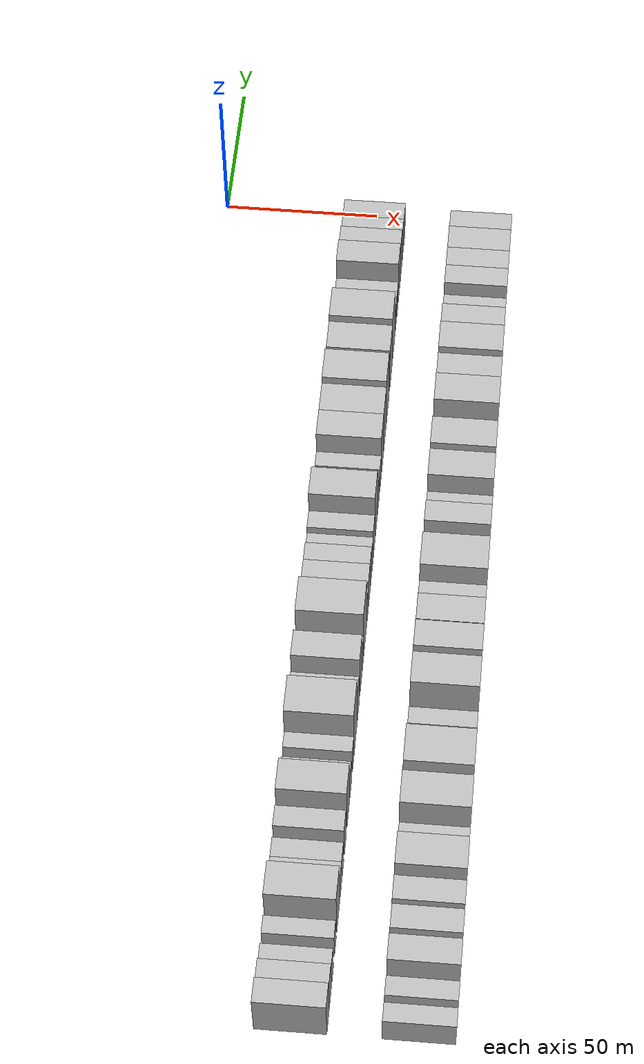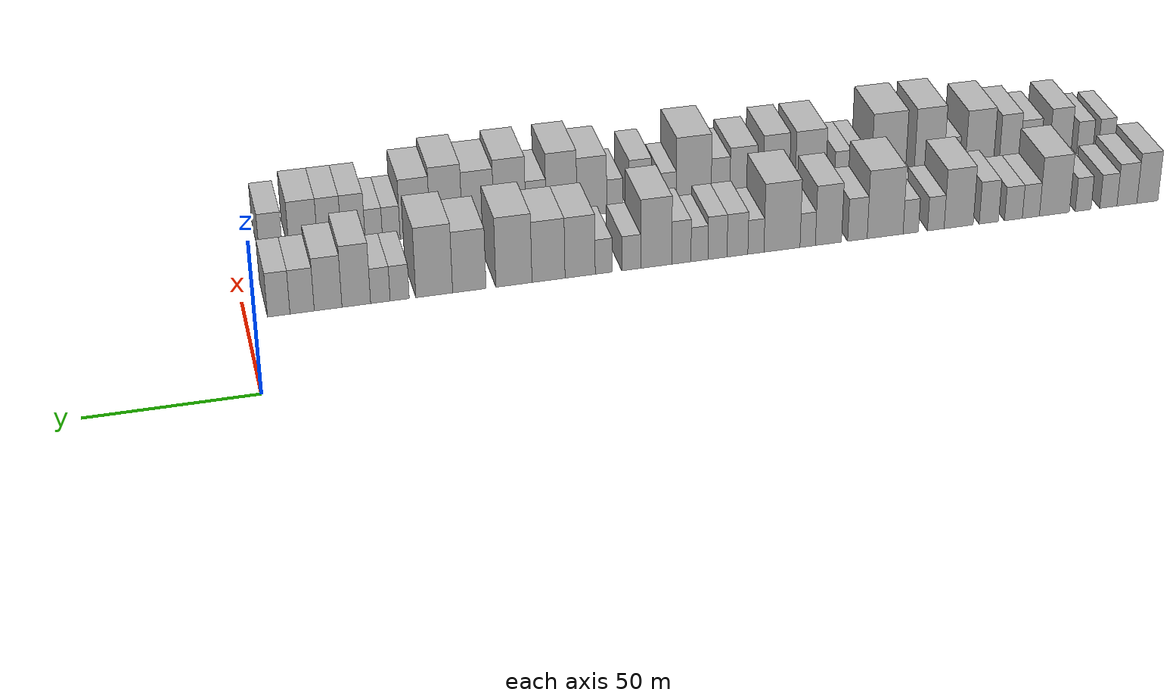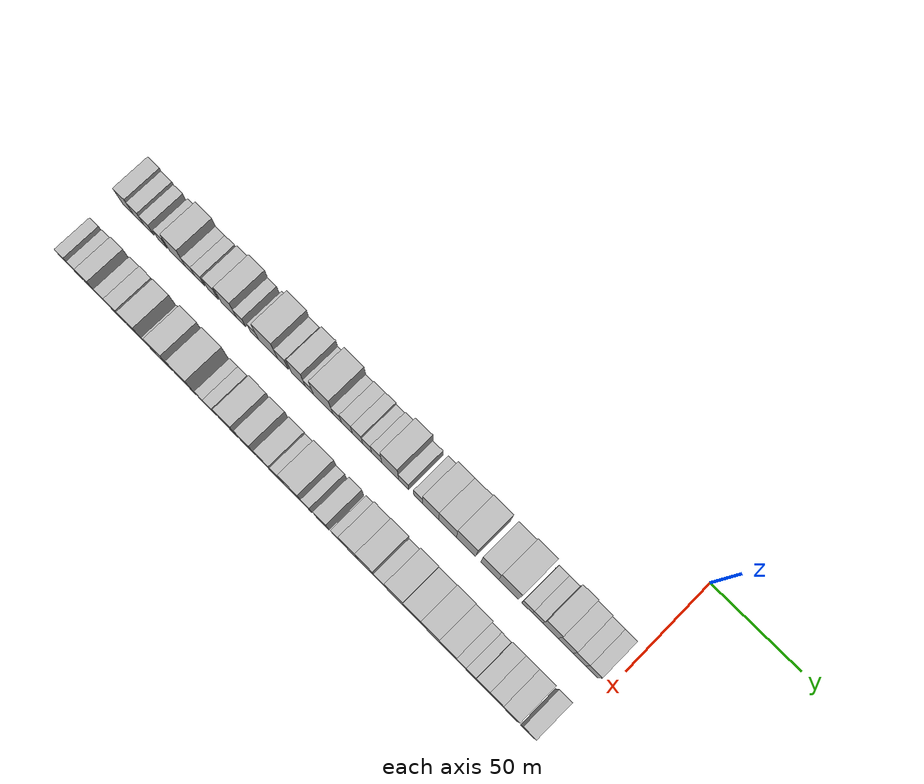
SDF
<sdf version="1.6">
 <world name="default">
  <model name="building_1">
   <static>1</static>
   <pose>50.0000 -286.3895 0 0.000000 0.000000 0.000000</pose>
   <link name="link">
    <pose>0 0 9.00 0 0 0</pose>
    <collision name="collision"><geometry><box><size>20.0000 7.2210 18.0000</size></box></geometry></collision>
    <visual name="visual">
     <cast_shadows>0</cast_shadows>
     <geometry><box><size>20.0000 7.2210 18.0000</size></box></geometry>
     <material>
      <script>
       <uri>model://HANNAS_wall/materials/scripts</uri>
       <uri>model://HANNAS_wall/materials/textures</uri>
       <name>vrc/HANNAS_wall</name>
      </script>
     </material>
    </visual>
   </link>
  </model>
  <model name="building_2">
   <static>1</static>
   <pose>50.0000 -279.3729 0 0.000000 0.000000 0.000000</pose>
   <link name="link">
    <pose>0 0 7.50 0 0 0</pose>
    <collision name="collision"><geometry><box><size>20.0000 6.8122 15.0000</size></box></geometry></collision>
    <visual name="visual">
     <cast_shadows>0</cast_shadows>
     <geometry><box><size>20.0000 6.8122 15.0000</size></box></geometry>
     <material>
      <script>
       <uri>model://HANNAS_wall/materials/scripts</uri>
       <uri>model://HANNAS_wall/materials/textures</uri>
       <name>vrc/HANNAS_wall</name>
      </script>
     </material>
    </visual>
   </link>
  </model>
  <model name="building_3">
   <static>1</static>
   <pose>50.0000 -273.0551 0 0.000000 0.000000 0.000000</pose>
   <link name="link">
    <pose>0 0 6.00 0 0 0</pose>
    <collision name="collision"><geometry><box><size>20.0000 5.8235 12.0000</size></box></geometry></collision>
    <visual name="visual">
     <cast_shadows>0</cast_shadows>
     <geometry><box><size>20.0000 5.8235 12.0000</size></box></geometry>
     <material>
      <script>
       <uri>model://HANNAS_wall/materials/scripts</uri>
       <uri>model://HANNAS_wall/materials/textures</uri>
       <name>vrc/HANNAS_wall</name>
      </script>
     </material>
    </visual>
   </link>
  </model>
  <model name="building_4">
   <static>1</static>
   <pose>50.0000 -264.4733 0 0.000000 0.000000 0.000000</pose>
   <link name="link">
    <pose>0 0 6.00 0 0 0</pose>
    <collision name="collision"><geometry><box><size>20.0000 5.3401 12.0000</size></box></geometry></collision>
    <visual name="visual">
     <cast_shadows>0</cast_shadows>
     <geometry><box><size>20.0000 5.3401 12.0000</size></box></geometry>
     <material>
      <script>
       <uri>model://HANNAS_wall/materials/scripts</uri>
       <uri>model://HANNAS_wall/materials/textures</uri>
       <name>vrc/HANNAS_wall</name>
      </script>
     </material>
    </visual>
   </link>
  </model>
  <model name="building_5">
   <static>1</static>
   <pose>50.0000 -254.7529 0 0.000000 0.000000 0.000000</pose>
   <link name="link">
    <pose>0 0 10.50 0 0 0</pose>
    <collision name="collision"><geometry><box><size>20.0000 10.1005 21.0000</size></box></geometry></collision>
    <visual name="visual">
     <cast_shadows>0</cast_shadows>
     <geometry><box><size>20.0000 10.1005 21.0000</size></box></geometry>
     <material>
      <script>
       <uri>model://HANNAS_wall/materials/scripts</uri>
       <uri>model://HANNAS_wall/materials/textures</uri>
       <name>vrc/HANNAS_wall</name>
      </script>
     </material>
    </visual>
   </link>
  </model>
  <model name="building_6">
   <static>1</static>
   <pose>50.0000 -246.8271 0 0.000000 0.000000 0.000000</pose>
   <link name="link">
    <pose>0 0 6.00 0 0 0</pose>
    <collision name="collision"><geometry><box><size>20.0000 5.7511 12.0000</size></box></geometry></collision>
    <visual name="visual">
     <cast_shadows>0</cast_shadows>
     <geometry><box><size>20.0000 5.7511 12.0000</size></box></geometry>
     <material>
      <script>
       <uri>model://HANNAS_wall/materials/scripts</uri>
       <uri>model://HANNAS_wall/materials/textures</uri>
       <name>vrc/HANNAS_wall</name>
      </script>
     </material>
    </visual>
   </link>
  </model>
  <model name="building_7">
   <static>1</static>
   <pose>50.0000 -240.9666 0 0.000000 0.000000 0.000000</pose>
   <link name="link">
    <pose>0 0 6.00 0 0 0</pose>
    <collision name="collision"><geometry><box><size>20.0000 5.9700 12.0000</size></box></geometry></collision>
    <visual name="visual">
     <cast_shadows>0</cast_shadows>
     <geometry><box><size>20.0000 5.9700 12.0000</size></box></geometry>
     <material>
      <script>
       <uri>model://HANNAS_wall/materials/scripts</uri>
       <uri>model://HANNAS_wall/materials/textures</uri>
       <name>vrc/HANNAS_wall</name>
      </script>
     </material>
    </visual>
   </link>
  </model>
  <model name="building_8">
   <static>1</static>
   <pose>50.0000 -232.7494 0 0.000000 0.000000 0.000000</pose>
   <link name="link">
    <pose>0 0 7.50 0 0 0</pose>
    <collision name="collision"><geometry><box><size>20.0000 6.4645 15.0000</size></box></geometry></collision>
    <visual name="visual">
     <cast_shadows>0</cast_shadows>
     <geometry><box><size>20.0000 6.4645 15.0000</size></box></geometry>
     <material>
      <script>
       <uri>model://HANNAS_wall/materials/scripts</uri>
       <uri>model://HANNAS_wall/materials/textures</uri>
       <name>vrc/HANNAS_wall</name>
      </script>
     </material>
    </visual>
   </link>
  </model>
  <model name="building_9">
   <static>1</static>
   <pose>50.0000 -222.6896 0 0.000000 0.000000 0.000000</pose>
   <link name="link">
    <pose>0 0 10.50 0 0 0</pose>
    <collision name="collision"><geometry><box><size>20.0000 9.6550 21.0000</size></box></geometry></collision>
    <visual name="visual">
     <cast_shadows>0</cast_shadows>
     <geometry><box><size>20.0000 9.6550 21.0000</size></box></geometry>
     <material>
      <script>
       <uri>model://HANNAS_wall/materials/scripts</uri>
       <uri>model://HANNAS_wall/materials/textures</uri>
       <name>vrc/HANNAS_wall</name>
      </script>
     </material>
    </visual>
   </link>
  </model>
  <model name="building_10">
   <static>1</static>
   <pose>50.0000 -215.1177 0 0.000000 0.000000 0.000000</pose>
   <link name="link">
    <pose>0 0 6.00 0 0 0</pose>
    <collision name="collision"><geometry><box><size>20.0000 5.4889 12.0000</size></box></geometry></collision>
    <visual name="visual">
     <cast_shadows>0</cast_shadows>
     <geometry><box><size>20.0000 5.4889 12.0000</size></box></geometry>
     <material>
      <script>
       <uri>model://HANNAS_wall/materials/scripts</uri>
       <uri>model://HANNAS_wall/materials/textures</uri>
       <name>vrc/HANNAS_wall</name>
      </script>
     </material>
    </visual>
   </link>
  </model>
  <model name="building_11">
   <static>1</static>
   <pose>50.0000 -206.8450 0 0.000000 0.000000 0.000000</pose>
   <link name="link">
    <pose>0 0 6.00 0 0 0</pose>
    <collision name="collision"><geometry><box><size>20.0000 5.0564 12.0000</size></box></geometry></collision>
    <visual name="visual">
     <cast_shadows>0</cast_shadows>
     <geometry><box><size>20.0000 5.0564 12.0000</size></box></geometry>
     <material>
      <script>
       <uri>model://HANNAS_wall/materials/scripts</uri>
       <uri>model://HANNAS_wall/materials/textures</uri>
       <name>vrc/HANNAS_wall</name>
      </script>
     </material>
    </visual>
   </link>
  </model>
  <model name="building_12">
   <static>1</static>
   <pose>50.0000 -198.4325 0 0.000000 0.000000 0.000000</pose>
   <link name="link">
    <pose>0 0 12.00 0 0 0</pose>
    <collision name="collision"><geometry><box><size>20.0000 11.7688 24.0000</size></box></geometry></collision>
    <visual name="visual">
     <cast_shadows>0</cast_shadows>
     <geometry><box><size>20.0000 11.7688 24.0000</size></box></geometry>
     <material>
      <script>
       <uri>model://HANNAS_wall/materials/scripts</uri>
       <uri>model://HANNAS_wall/materials/textures</uri>
       <name>vrc/HANNAS_wall</name>
      </script>
     </material>
    </visual>
   </link>
  </model>
  <model name="building_13">
   <static>1</static>
   <pose>50.0000 -189.3701 0 0.000000 0.000000 0.000000</pose>
   <link name="link">
    <pose>0 0 7.50 0 0 0</pose>
    <collision name="collision"><geometry><box><size>20.0000 6.3559 15.0000</size></box></geometry></collision>
    <visual name="visual">
     <cast_shadows>0</cast_shadows>
     <geometry><box><size>20.0000 6.3559 15.0000</size></box></geometry>
     <material>
      <script>
       <uri>model://HANNAS_wall/materials/scripts</uri>
       <uri>model://HANNAS_wall/materials/textures</uri>
       <name>vrc/HANNAS_wall</name>
      </script>
     </material>
    </visual>
   </link>
  </model>
  <model name="building_14">
   <static>1</static>
   <pose>50.0000 -179.9469 0 0.000000 0.000000 0.000000</pose>
   <link name="link">
    <pose>0 0 10.50 0 0 0</pose>
    <collision name="collision"><geometry><box><size>20.0000 8.4906 21.0000</size></box></geometry></collision>
    <visual name="visual">
     <cast_shadows>0</cast_shadows>
     <geometry><box><size>20.0000 8.4906 21.0000</size></box></geometry>
     <material>
      <script>
       <uri>model://HANNAS_wall/materials/scripts</uri>
       <uri>model://HANNAS_wall/materials/textures</uri>
       <name>vrc/HANNAS_wall</name>
      </script>
     </material>
    </visual>
   </link>
  </model>
  <model name="building_15">
   <static>1</static>
   <pose>50.0000 -173.2191 0 0.000000 0.000000 0.000000</pose>
   <link name="link">
    <pose>0 0 6.00 0 0 0</pose>
    <collision name="collision"><geometry><box><size>20.0000 4.9650 12.0000</size></box></geometry></collision>
    <visual name="visual">
     <cast_shadows>0</cast_shadows>
     <geometry><box><size>20.0000 4.9650 12.0000</size></box></geometry>
     <material>
      <script>
       <uri>model://HANNAS_wall/materials/scripts</uri>
       <uri>model://HANNAS_wall/materials/textures</uri>
       <name>vrc/HANNAS_wall</name>
      </script>
     </material>
    </visual>
   </link>
  </model>
  <model name="building_16">
   <static>1</static>
   <pose>50.0000 -164.9299 0 0.000000 0.000000 0.000000</pose>
   <link name="link">
    <pose>0 0 12.00 0 0 0</pose>
    <collision name="collision"><geometry><box><size>20.0000 11.6135 24.0000</size></box></geometry></collision>
    <visual name="visual">
     <cast_shadows>0</cast_shadows>
     <geometry><box><size>20.0000 11.6135 24.0000</size></box></geometry>
     <material>
      <script>
       <uri>model://HANNAS_wall/materials/scripts</uri>
       <uri>model://HANNAS_wall/materials/textures</uri>
       <name>vrc/HANNAS_wall</name>
      </script>
     </material>
    </visual>
   </link>
  </model>
  <model name="building_17">
   <static>1</static>
   <pose>50.0000 -156.5490 0 0.000000 0.000000 0.000000</pose>
   <link name="link">
    <pose>0 0 6.00 0 0 0</pose>
    <collision name="collision"><geometry><box><size>20.0000 5.1484 12.0000</size></box></geometry></collision>
    <visual name="visual">
     <cast_shadows>0</cast_shadows>
     <geometry><box><size>20.0000 5.1484 12.0000</size></box></geometry>
     <material>
      <script>
       <uri>model://HANNAS_wall/materials/scripts</uri>
       <uri>model://HANNAS_wall/materials/textures</uri>
       <name>vrc/HANNAS_wall</name>
      </script>
     </material>
    </visual>
   </link>
  </model>
  <model name="building_18">
   <static>1</static>
   <pose>50.0000 -150.6503 0 0.000000 0.000000 0.000000</pose>
   <link name="link">
    <pose>0 0 7.50 0 0 0</pose>
    <collision name="collision"><geometry><box><size>20.0000 6.6490 15.0000</size></box></geometry></collision>
    <visual name="visual">
     <cast_shadows>0</cast_shadows>
     <geometry><box><size>20.0000 6.6490 15.0000</size></box></geometry>
     <material>
      <script>
       <uri>model://HANNAS_wall/materials/scripts</uri>
       <uri>model://HANNAS_wall/materials/textures</uri>
       <name>vrc/HANNAS_wall</name>
      </script>
     </material>
    </visual>
   </link>
  </model>
  <model name="building_19">
   <static>1</static>
   <pose>50.0000 -144.2925 0 0.000000 0.000000 0.000000</pose>
   <link name="link">
    <pose>0 0 7.50 0 0 0</pose>
    <collision name="collision"><geometry><box><size>20.0000 6.0666 15.0000</size></box></geometry></collision>
    <visual name="visual">
     <cast_shadows>0</cast_shadows>
     <geometry><box><size>20.0000 6.0666 15.0000</size></box></geometry>
     <material>
      <script>
       <uri>model://HANNAS_wall/materials/scripts</uri>
       <uri>model://HANNAS_wall/materials/textures</uri>
       <name>vrc/HANNAS_wall</name>
      </script>
     </material>
    </visual>
   </link>
  </model>
  <model name="building_20">
   <static>1</static>
   <pose>50.0000 -138.5595 0 0.000000 0.000000 0.000000</pose>
   <link name="link">
    <pose>0 0 6.00 0 0 0</pose>
    <collision name="collision"><geometry><box><size>20.0000 5.3994 12.0000</size></box></geometry></collision>
    <visual name="visual">
     <cast_shadows>0</cast_shadows>
     <geometry><box><size>20.0000 5.3994 12.0000</size></box></geometry>
     <material>
      <script>
       <uri>model://HANNAS_wall/materials/scripts</uri>
       <uri>model://HANNAS_wall/materials/textures</uri>
       <name>vrc/HANNAS_wall</name>
      </script>
     </material>
    </visual>
   </link>
  </model>
  <model name="building_21">
   <static>1</static>
   <pose>50.0000 -132.8455 0 0.000000 0.000000 0.000000</pose>
   <link name="link">
    <pose>0 0 7.50 0 0 0</pose>
    <collision name="collision"><geometry><box><size>20.0000 6.0286 15.0000</size></box></geometry></collision>
    <visual name="visual">
     <cast_shadows>0</cast_shadows>
     <geometry><box><size>20.0000 6.0286 15.0000</size></box></geometry>
     <material>
      <script>
       <uri>model://HANNAS_wall/materials/scripts</uri>
       <uri>model://HANNAS_wall/materials/textures</uri>
       <name>vrc/HANNAS_wall</name>
      </script>
     </material>
    </visual>
   </link>
  </model>
  <model name="building_22">
   <static>1</static>
   <pose>50.0000 -124.9020 0 0.000000 0.000000 0.000000</pose>
   <link name="link">
    <pose>0 0 12.00 0 0 0</pose>
    <collision name="collision"><geometry><box><size>20.0000 9.8583 24.0000</size></box></geometry></collision>
    <visual name="visual">
     <cast_shadows>0</cast_shadows>
     <geometry><box><size>20.0000 9.8583 24.0000</size></box></geometry>
     <material>
      <script>
       <uri>model://HANNAS_wall/materials/scripts</uri>
       <uri>model://HANNAS_wall/materials/textures</uri>
       <name>vrc/HANNAS_wall</name>
      </script>
     </material>
    </visual>
   </link>
  </model>
  <model name="building_23">
   <static>1</static>
   <pose>50.0000 -117.0329 0 0.000000 0.000000 0.000000</pose>
   <link name="link">
    <pose>0 0 6.00 0 0 0</pose>
    <collision name="collision"><geometry><box><size>20.0000 5.8799 12.0000</size></box></geometry></collision>
    <visual name="visual">
     <cast_shadows>0</cast_shadows>
     <geometry><box><size>20.0000 5.8799 12.0000</size></box></geometry>
     <material>
      <script>
       <uri>model://HANNAS_wall/materials/scripts</uri>
       <uri>model://HANNAS_wall/materials/textures</uri>
       <name>vrc/HANNAS_wall</name>
      </script>
     </material>
    </visual>
   </link>
  </model>
  <model name="building_24">
   <static>1</static>
   <pose>50.0000 -108.4351 0 0.000000 0.000000 0.000000</pose>
   <link name="link">
    <pose>0 0 6.00 0 0 0</pose>
    <collision name="collision"><geometry><box><size>20.0000 5.3156 12.0000</size></box></geometry></collision>
    <visual name="visual">
     <cast_shadows>0</cast_shadows>
     <geometry><box><size>20.0000 5.3156 12.0000</size></box></geometry>
     <material>
      <script>
       <uri>model://HANNAS_wall/materials/scripts</uri>
       <uri>model://HANNAS_wall/materials/textures</uri>
       <name>vrc/HANNAS_wall</name>
      </script>
     </material>
    </visual>
   </link>
  </model>
  <model name="building_25">
   <static>1</static>
   <pose>50.0000 -101.0850 0 0.000000 0.000000 0.000000</pose>
   <link name="link">
    <pose>0 0 10.50 0 0 0</pose>
    <collision name="collision"><geometry><box><size>20.0000 9.3847 21.0000</size></box></geometry></collision>
    <visual name="visual">
     <cast_shadows>0</cast_shadows>
     <geometry><box><size>20.0000 9.3847 21.0000</size></box></geometry>
     <material>
      <script>
       <uri>model://HANNAS_wall/materials/scripts</uri>
       <uri>model://HANNAS_wall/materials/textures</uri>
       <name>vrc/HANNAS_wall</name>
      </script>
     </material>
    </visual>
   </link>
  </model>
  <model name="building_26">
   <static>1</static>
   <pose>50.0000 -91.2807 0 0.000000 0.000000 0.000000</pose>
   <link name="link">
    <pose>0 0 10.50 0 0 0</pose>
    <collision name="collision"><geometry><box><size>20.0000 10.2239 21.0000</size></box></geometry></collision>
    <visual name="visual">
     <cast_shadows>0</cast_shadows>
     <geometry><box><size>20.0000 10.2239 21.0000</size></box></geometry>
     <material>
      <script>
       <uri>model://HANNAS_wall/materials/scripts</uri>
       <uri>model://HANNAS_wall/materials/textures</uri>
       <name>vrc/HANNAS_wall</name>
      </script>
     </material>
    </visual>
   </link>
  </model>
  <model name="building_27">
   <static>1</static>
   <pose>50.0000 -80.6186 0 0.000000 0.000000 0.000000</pose>
   <link name="link">
    <pose>0 0 12.00 0 0 0</pose>
    <collision name="collision"><geometry><box><size>20.0000 11.1003 24.0000</size></box></geometry></collision>
    <visual name="visual">
     <cast_shadows>0</cast_shadows>
     <geometry><box><size>20.0000 11.1003 24.0000</size></box></geometry>
     <material>
      <script>
       <uri>model://HANNAS_wall/materials/scripts</uri>
       <uri>model://HANNAS_wall/materials/textures</uri>
       <name>vrc/HANNAS_wall</name>
      </script>
     </material>
    </visual>
   </link>
  </model>
  <model name="building_28">
   <static>1</static>
   <pose>50.0000 -66.9657 0 0.000000 0.000000 0.000000</pose>
   <link name="link">
    <pose>0 0 10.50 0 0 0</pose>
    <collision name="collision"><geometry><box><size>20.0000 10.2054 21.0000</size></box></geometry></collision>
    <visual name="visual">
     <cast_shadows>0</cast_shadows>
     <geometry><box><size>20.0000 10.2054 21.0000</size></box></geometry>
     <material>
      <script>
       <uri>model://HANNAS_wall/materials/scripts</uri>
       <uri>model://HANNAS_wall/materials/textures</uri>
       <name>vrc/HANNAS_wall</name>
      </script>
     </material>
    </visual>
   </link>
  </model>
  <model name="building_29">
   <static>1</static>
   <pose>50.0000 -56.2812 0 0.000000 0.000000 0.000000</pose>
   <link name="link">
    <pose>0 0 12.00 0 0 0</pose>
    <collision name="collision"><geometry><box><size>20.0000 11.1637 24.0000</size></box></geometry></collision>
    <visual name="visual">
     <cast_shadows>0</cast_shadows>
     <geometry><box><size>20.0000 11.1637 24.0000</size></box></geometry>
     <material>
      <script>
       <uri>model://HANNAS_wall/materials/scripts</uri>
       <uri>model://HANNAS_wall/materials/textures</uri>
       <name>vrc/HANNAS_wall</name>
      </script>
     </material>
    </visual>
   </link>
  </model>
  <model name="building_30">
   <static>1</static>
   <pose>50.0000 -45.8224 0 0.000000 0.000000 0.000000</pose>
   <link name="link">
    <pose>0 0 6.00 0 0 0</pose>
    <collision name="collision"><geometry><box><size>20.0000 5.7540 12.0000</size></box></geometry></collision>
    <visual name="visual">
     <cast_shadows>0</cast_shadows>
     <geometry><box><size>20.0000 5.7540 12.0000</size></box></geometry>
     <material>
      <script>
       <uri>model://HANNAS_wall/materials/scripts</uri>
       <uri>model://HANNAS_wall/materials/textures</uri>
       <name>vrc/HANNAS_wall</name>
      </script>
     </material>
    </visual>
   </link>
  </model>
  <model name="building_31">
   <static>1</static>
   <pose>50.0000 -40.0100 0 0.000000 0.000000 0.000000</pose>
   <link name="link">
    <pose>0 0 6.00 0 0 0</pose>
    <collision name="collision"><geometry><box><size>20.0000 5.8707 12.0000</size></box></geometry></collision>
    <visual name="visual">
     <cast_shadows>0</cast_shadows>
     <geometry><box><size>20.0000 5.8707 12.0000</size></box></geometry>
     <material>
      <script>
       <uri>model://HANNAS_wall/materials/scripts</uri>
       <uri>model://HANNAS_wall/materials/textures</uri>
       <name>vrc/HANNAS_wall</name>
      </script>
     </material>
    </visual>
   </link>
  </model>
  <model name="building_32">
   <static>1</static>
   <pose>50.0000 -32.7911 0 0.000000 0.000000 0.000000</pose>
   <link name="link">
    <pose>0 0 10.50 0 0 0</pose>
    <collision name="collision"><geometry><box><size>20.0000 8.5672 21.0000</size></box></geometry></collision>
    <visual name="visual">
     <cast_shadows>0</cast_shadows>
     <geometry><box><size>20.0000 8.5672 21.0000</size></box></geometry>
     <material>
      <script>
       <uri>model://HANNAS_wall/materials/scripts</uri>
       <uri>model://HANNAS_wall/materials/textures</uri>
       <name>vrc/HANNAS_wall</name>
      </script>
     </material>
    </visual>
   </link>
  </model>
  <model name="building_33">
   <static>1</static>
   <pose>50.0000 -24.3727 0 0.000000 0.000000 0.000000</pose>
   <link name="link">
    <pose>0 0 9.00 0 0 0</pose>
    <collision name="collision"><geometry><box><size>20.0000 8.2696 18.0000</size></box></geometry></collision>
    <visual name="visual">
     <cast_shadows>0</cast_shadows>
     <geometry><box><size>20.0000 8.2696 18.0000</size></box></geometry>
     <material>
      <script>
       <uri>model://HANNAS_wall/materials/scripts</uri>
       <uri>model://HANNAS_wall/materials/textures</uri>
       <name>vrc/HANNAS_wall</name>
      </script>
     </material>
    </visual>
   </link>
  </model>
  <model name="building_34">
   <static>1</static>
   <pose>50.0000 -16.6368 0 0.000000 0.000000 0.000000</pose>
   <link name="link">
    <pose>0 0 7.50 0 0 0</pose>
    <collision name="collision"><geometry><box><size>20.0000 7.2022 15.0000</size></box></geometry></collision>
    <visual name="visual">
     <cast_shadows>0</cast_shadows>
     <geometry><box><size>20.0000 7.2022 15.0000</size></box></geometry>
     <material>
      <script>
       <uri>model://HANNAS_wall/materials/scripts</uri>
       <uri>model://HANNAS_wall/materials/textures</uri>
       <name>vrc/HANNAS_wall</name>
      </script>
     </material>
    </visual>
   </link>
  </model>
  <model name="building_35">
   <static>1</static>
   <pose>50.0000 -9.7083 0 0.000000 0.000000 0.000000</pose>
   <link name="link">
    <pose>0 0 7.50 0 0 0</pose>
    <collision name="collision"><geometry><box><size>20.0000 6.6549 15.0000</size></box></geometry></collision>
    <visual name="visual">
     <cast_shadows>0</cast_shadows>
     <geometry><box><size>20.0000 6.6549 15.0000</size></box></geometry>
     <material>
      <script>
       <uri>model://HANNAS_wall/materials/scripts</uri>
       <uri>model://HANNAS_wall/materials/textures</uri>
       <name>vrc/HANNAS_wall</name>
      </script>
     </material>
    </visual>
   </link>
  </model>
  <model name="building_69">
   <static>1</static>
   <pose>85.0000 -287.2218 0 0.000000 0.000000 0.000000</pose>
   <link name="link">
    <pose>0 0 6.00 0 0 0</pose>
    <collision name="collision"><geometry><box><size>20.0000 5.5563 12.0000</size></box></geometry></collision>
    <visual name="visual">
     <cast_shadows>0</cast_shadows>
     <geometry><box><size>20.0000 5.5563 12.0000</size></box></geometry>
     <material>
      <script>
       <uri>model://HANNAS_wall/materials/scripts</uri>
       <uri>model://HANNAS_wall/materials/textures</uri>
       <name>vrc/HANNAS_wall</name>
      </script>
     </material>
    </visual>
   </link>
  </model>
  <model name="building_70">
   <static>1</static>
   <pose>85.0000 -279.5764 0 0.000000 0.000000 0.000000</pose>
   <link name="link">
    <pose>0 0 6.00 0 0 0</pose>
    <collision name="collision"><geometry><box><size>20.0000 5.7345 12.0000</size></box></geometry></collision>
    <visual name="visual">
     <cast_shadows>0</cast_shadows>
     <geometry><box><size>20.0000 5.7345 12.0000</size></box></geometry>
     <material>
      <script>
       <uri>model://HANNAS_wall/materials/scripts</uri>
       <uri>model://HANNAS_wall/materials/textures</uri>
       <name>vrc/HANNAS_wall</name>
      </script>
     </material>
    </visual>
   </link>
  </model>
  <model name="building_71">
   <static>1</static>
   <pose>85.0000 -270.8508 0 0.000000 0.000000 0.000000</pose>
   <link name="link">
    <pose>0 0 9.00 0 0 0</pose>
    <collision name="collision"><geometry><box><size>20.0000 7.7169 18.0000</size></box></geometry></collision>
    <visual name="visual">
     <cast_shadows>0</cast_shadows>
     <geometry><box><size>20.0000 7.7169 18.0000</size></box></geometry>
     <material>
      <script>
       <uri>model://HANNAS_wall/materials/scripts</uri>
       <uri>model://HANNAS_wall/materials/textures</uri>
       <name>vrc/HANNAS_wall</name>
      </script>
     </material>
    </visual>
   </link>
  </model>
  <model name="building_72">
   <static>1</static>
   <pose>85.0000 -260.3975 0 0.000000 0.000000 0.000000</pose>
   <link name="link">
    <pose>0 0 7.50 0 0 0</pose>
    <collision name="collision"><geometry><box><size>20.0000 7.1897 15.0000</size></box></geometry></collision>
    <visual name="visual">
     <cast_shadows>0</cast_shadows>
     <geometry><box><size>20.0000 7.1897 15.0000</size></box></geometry>
     <material>
      <script>
       <uri>model://HANNAS_wall/materials/scripts</uri>
       <uri>model://HANNAS_wall/materials/textures</uri>
       <name>vrc/HANNAS_wall</name>
      </script>
     </material>
    </visual>
   </link>
  </model>
  <model name="building_73">
   <static>1</static>
   <pose>85.0000 -253.2020 0 0.000000 0.000000 0.000000</pose>
   <link name="link">
    <pose>0 0 9.00 0 0 0</pose>
    <collision name="collision"><geometry><box><size>20.0000 7.2012 18.0000</size></box></geometry></collision>
    <visual name="visual">
     <cast_shadows>0</cast_shadows>
     <geometry><box><size>20.0000 7.2012 18.0000</size></box></geometry>
     <material>
      <script>
       <uri>model://HANNAS_wall/materials/scripts</uri>
       <uri>model://HANNAS_wall/materials/textures</uri>
       <name>vrc/HANNAS_wall</name>
      </script>
     </material>
    </visual>
   </link>
  </model>
  <model name="building_74">
   <static>1</static>
   <pose>85.0000 -242.7041 0 0.000000 0.000000 0.000000</pose>
   <link name="link">
    <pose>0 0 10.50 0 0 0</pose>
    <collision name="collision"><geometry><box><size>20.0000 9.7946 21.0000</size></box></geometry></collision>
    <visual name="visual">
     <cast_shadows>0</cast_shadows>
     <geometry><box><size>20.0000 9.7946 21.0000</size></box></geometry>
     <material>
      <script>
       <uri>model://HANNAS_wall/materials/scripts</uri>
       <uri>model://HANNAS_wall/materials/textures</uri>
       <name>vrc/HANNAS_wall</name>
      </script>
     </material>
    </visual>
   </link>
  </model>
  <model name="building_75">
   <static>1</static>
   <pose>85.0000 -233.1061 0 0.000000 0.000000 0.000000</pose>
   <link name="link">
    <pose>0 0 6.00 0 0 0</pose>
    <collision name="collision"><geometry><box><size>20.0000 5.4014 12.0000</size></box></geometry></collision>
    <visual name="visual">
     <cast_shadows>0</cast_shadows>
     <geometry><box><size>20.0000 5.4014 12.0000</size></box></geometry>
     <material>
      <script>
       <uri>model://HANNAS_wall/materials/scripts</uri>
       <uri>model://HANNAS_wall/materials/textures</uri>
       <name>vrc/HANNAS_wall</name>
      </script>
     </material>
    </visual>
   </link>
  </model>
  <model name="building_76">
   <static>1</static>
   <pose>85.0000 -225.3223 0 0.000000 0.000000 0.000000</pose>
   <link name="link">
    <pose>0 0 12.00 0 0 0</pose>
    <collision name="collision"><geometry><box><size>20.0000 10.1661 24.0000</size></box></geometry></collision>
    <visual name="visual">
     <cast_shadows>0</cast_shadows>
     <geometry><box><size>20.0000 10.1661 24.0000</size></box></geometry>
     <material>
      <script>
       <uri>model://HANNAS_wall/materials/scripts</uri>
       <uri>model://HANNAS_wall/materials/textures</uri>
       <name>vrc/HANNAS_wall</name>
      </script>
     </material>
    </visual>
   </link>
  </model>
  <model name="building_77">
   <static>1</static>
   <pose>85.0000 -211.3919 0 0.000000 0.000000 0.000000</pose>
   <link name="link">
    <pose>0 0 12.00 0 0 0</pose>
    <collision name="collision"><geometry><box><size>20.0000 11.6947 24.0000</size></box></geometry></collision>
    <visual name="visual">
     <cast_shadows>0</cast_shadows>
     <geometry><box><size>20.0000 11.6947 24.0000</size></box></geometry>
     <material>
      <script>
       <uri>model://HANNAS_wall/materials/scripts</uri>
       <uri>model://HANNAS_wall/materials/textures</uri>
       <name>vrc/HANNAS_wall</name>
      </script>
     </material>
    </visual>
   </link>
  </model>
  <model name="building_78">
   <static>1</static>
   <pose>85.0000 -201.0595 0 0.000000 0.000000 0.000000</pose>
   <link name="link">
    <pose>0 0 6.00 0 0 0</pose>
    <collision name="collision"><geometry><box><size>20.0000 4.9701 12.0000</size></box></geometry></collision>
    <visual name="visual">
     <cast_shadows>0</cast_shadows>
     <geometry><box><size>20.0000 4.9701 12.0000</size></box></geometry>
     <material>
      <script>
       <uri>model://HANNAS_wall/materials/scripts</uri>
       <uri>model://HANNAS_wall/materials/textures</uri>
       <name>vrc/HANNAS_wall</name>
      </script>
     </material>
    </visual>
   </link>
  </model>
  <model name="building_79">
   <static>1</static>
   <pose>85.0000 -195.8603 0 0.000000 0.000000 0.000000</pose>
   <link name="link">
    <pose>0 0 6.00 0 0 0</pose>
    <collision name="collision"><geometry><box><size>20.0000 5.4282 12.0000</size></box></geometry></collision>
    <visual name="visual">
     <cast_shadows>0</cast_shadows>
     <geometry><box><size>20.0000 5.4282 12.0000</size></box></geometry>
     <material>
      <script>
       <uri>model://HANNAS_wall/materials/scripts</uri>
       <uri>model://HANNAS_wall/materials/textures</uri>
       <name>vrc/HANNAS_wall</name>
      </script>
     </material>
    </visual>
   </link>
  </model>
  <model name="building_80">
   <static>1</static>
   <pose>85.0000 -185.0249 0 0.000000 0.000000 0.000000</pose>
   <link name="link">
    <pose>0 0 10.50 0 0 0</pose>
    <collision name="collision"><geometry><box><size>20.0000 10.2426 21.0000</size></box></geometry></collision>
    <visual name="visual">
     <cast_shadows>0</cast_shadows>
     <geometry><box><size>20.0000 10.2426 21.0000</size></box></geometry>
     <material>
      <script>
       <uri>model://HANNAS_wall/materials/scripts</uri>
       <uri>model://HANNAS_wall/materials/textures</uri>
       <name>vrc/HANNAS_wall</name>
      </script>
     </material>
    </visual>
   </link>
  </model>
  <model name="building_81">
   <static>1</static>
   <pose>85.0000 -173.4950 0 0.000000 0.000000 0.000000</pose>
   <link name="link">
    <pose>0 0 10.50 0 0 0</pose>
    <collision name="collision"><geometry><box><size>20.0000 8.8173 21.0000</size></box></geometry></collision>
    <visual name="visual">
     <cast_shadows>0</cast_shadows>
     <geometry><box><size>20.0000 8.8173 21.0000</size></box></geometry>
     <material>
      <script>
       <uri>model://HANNAS_wall/materials/scripts</uri>
       <uri>model://HANNAS_wall/materials/textures</uri>
       <name>vrc/HANNAS_wall</name>
      </script>
     </material>
    </visual>
   </link>
  </model>
  <model name="building_82">
   <static>1</static>
   <pose>85.0000 -162.6044 0 0.000000 0.000000 0.000000</pose>
   <link name="link">
    <pose>0 0 9.00 0 0 0</pose>
    <collision name="collision"><geometry><box><size>20.0000 8.9639 18.0000</size></box></geometry></collision>
    <visual name="visual">
     <cast_shadows>0</cast_shadows>
     <geometry><box><size>20.0000 8.9639 18.0000</size></box></geometry>
     <material>
      <script>
       <uri>model://HANNAS_wall/materials/scripts</uri>
       <uri>model://HANNAS_wall/materials/textures</uri>
       <name>vrc/HANNAS_wall</name>
      </script>
     </material>
    </visual>
   </link>
  </model>
  <model name="building_83">
   <static>1</static>
   <pose>85.0000 -155.0308 0 0.000000 0.000000 0.000000</pose>
   <link name="link">
    <pose>0 0 7.50 0 0 0</pose>
    <collision name="collision"><geometry><box><size>20.0000 6.1832 15.0000</size></box></geometry></collision>
    <visual name="visual">
     <cast_shadows>0</cast_shadows>
     <geometry><box><size>20.0000 6.1832 15.0000</size></box></geometry>
     <material>
      <script>
       <uri>model://HANNAS_wall/materials/scripts</uri>
       <uri>model://HANNAS_wall/materials/textures</uri>
       <name>vrc/HANNAS_wall</name>
      </script>
     </material>
    </visual>
   </link>
  </model>
  <model name="building_84">
   <static>1</static>
   <pose>85.0000 -146.2024 0 0.000000 0.000000 0.000000</pose>
   <link name="link">
    <pose>0 0 12.00 0 0 0</pose>
    <collision name="collision"><geometry><box><size>20.0000 11.4736 24.0000</size></box></geometry></collision>
    <visual name="visual">
     <cast_shadows>0</cast_shadows>
     <geometry><box><size>20.0000 11.4736 24.0000</size></box></geometry>
     <material>
      <script>
       <uri>model://HANNAS_wall/materials/scripts</uri>
       <uri>model://HANNAS_wall/materials/textures</uri>
       <name>vrc/HANNAS_wall</name>
      </script>
     </material>
    </visual>
   </link>
  </model>
  <model name="building_85">
   <static>1</static>
   <pose>85.0000 -137.9275 0 0.000000 0.000000 0.000000</pose>
   <link name="link">
    <pose>0 0 6.00 0 0 0</pose>
    <collision name="collision"><geometry><box><size>20.0000 5.0762 12.0000</size></box></geometry></collision>
    <visual name="visual">
     <cast_shadows>0</cast_shadows>
     <geometry><box><size>20.0000 5.0762 12.0000</size></box></geometry>
     <material>
      <script>
       <uri>model://HANNAS_wall/materials/scripts</uri>
       <uri>model://HANNAS_wall/materials/textures</uri>
       <name>vrc/HANNAS_wall</name>
      </script>
     </material>
    </visual>
   </link>
  </model>
  <model name="building_86">
   <static>1</static>
   <pose>85.0000 -128.7155 0 0.000000 0.000000 0.000000</pose>
   <link name="link">
    <pose>0 0 9.00 0 0 0</pose>
    <collision name="collision"><geometry><box><size>20.0000 7.3477 18.0000</size></box></geometry></collision>
    <visual name="visual">
     <cast_shadows>0</cast_shadows>
     <geometry><box><size>20.0000 7.3477 18.0000</size></box></geometry>
     <material>
      <script>
       <uri>model://HANNAS_wall/materials/scripts</uri>
       <uri>model://HANNAS_wall/materials/textures</uri>
       <name>vrc/HANNAS_wall</name>
      </script>
     </material>
    </visual>
   </link>
  </model>
  <model name="building_87">
   <static>1</static>
   <pose>85.0000 -120.3929 0 0.000000 0.000000 0.000000</pose>
   <link name="link">
    <pose>0 0 6.00 0 0 0</pose>
    <collision name="collision"><geometry><box><size>20.0000 5.2977 12.0000</size></box></geometry></collision>
    <visual name="visual">
     <cast_shadows>0</cast_shadows>
     <geometry><box><size>20.0000 5.2977 12.0000</size></box></geometry>
     <material>
      <script>
       <uri>model://HANNAS_wall/materials/scripts</uri>
       <uri>model://HANNAS_wall/materials/textures</uri>
       <name>vrc/HANNAS_wall</name>
      </script>
     </material>
    </visual>
   </link>
  </model>
  <model name="building_88">
   <static>1</static>
   <pose>85.0000 -112.9138 0 0.000000 0.000000 0.000000</pose>
   <link name="link">
    <pose>0 0 10.50 0 0 0</pose>
    <collision name="collision"><geometry><box><size>20.0000 9.6604 21.0000</size></box></geometry></collision>
    <visual name="visual">
     <cast_shadows>0</cast_shadows>
     <geometry><box><size>20.0000 9.6604 21.0000</size></box></geometry>
     <material>
      <script>
       <uri>model://HANNAS_wall/materials/scripts</uri>
       <uri>model://HANNAS_wall/materials/textures</uri>
       <name>vrc/HANNAS_wall</name>
      </script>
     </material>
    </visual>
   </link>
  </model>
  <model name="building_89">
   <static>1</static>
   <pose>85.0000 -103.1183 0 0.000000 0.000000 0.000000</pose>
   <link name="link">
    <pose>0 0 12.00 0 0 0</pose>
    <collision name="collision"><geometry><box><size>20.0000 9.9305 24.0000</size></box></geometry></collision>
    <visual name="visual">
     <cast_shadows>0</cast_shadows>
     <geometry><box><size>20.0000 9.9305 24.0000</size></box></geometry>
     <material>
      <script>
       <uri>model://HANNAS_wall/materials/scripts</uri>
       <uri>model://HANNAS_wall/materials/textures</uri>
       <name>vrc/HANNAS_wall</name>
      </script>
     </material>
    </visual>
   </link>
  </model>
  <model name="building_90">
   <static>1</static>
   <pose>85.0000 -94.8995 0 0.000000 0.000000 0.000000</pose>
   <link name="link">
    <pose>0 0 7.50 0 0 0</pose>
    <collision name="collision"><geometry><box><size>20.0000 6.5071 15.0000</size></box></geometry></collision>
    <visual name="visual">
     <cast_shadows>0</cast_shadows>
     <geometry><box><size>20.0000 6.5071 15.0000</size></box></geometry>
     <material>
      <script>
       <uri>model://HANNAS_wall/materials/scripts</uri>
       <uri>model://HANNAS_wall/materials/textures</uri>
       <name>vrc/HANNAS_wall</name>
      </script>
     </material>
    </visual>
   </link>
  </model>
  <model name="building_91">
   <static>1</static>
   <pose>85.0000 -86.5533 0 0.000000 0.000000 0.000000</pose>
   <link name="link">
    <pose>0 0 12.00 0 0 0</pose>
    <collision name="collision"><geometry><box><size>20.0000 10.1855 24.0000</size></box></geometry></collision>
    <visual name="visual">
     <cast_shadows>0</cast_shadows>
     <geometry><box><size>20.0000 10.1855 24.0000</size></box></geometry>
     <material>
      <script>
       <uri>model://HANNAS_wall/materials/scripts</uri>
       <uri>model://HANNAS_wall/materials/textures</uri>
       <name>vrc/HANNAS_wall</name>
      </script>
     </material>
    </visual>
   </link>
  </model>
  <model name="building_92">
   <static>1</static>
   <pose>85.0000 -76.4142 0 0.000000 0.000000 0.000000</pose>
   <link name="link">
    <pose>0 0 10.50 0 0 0</pose>
    <collision name="collision"><geometry><box><size>20.0000 10.0926 21.0000</size></box></geometry></collision>
    <visual name="visual">
     <cast_shadows>0</cast_shadows>
     <geometry><box><size>20.0000 10.0926 21.0000</size></box></geometry>
     <material>
      <script>
       <uri>model://HANNAS_wall/materials/scripts</uri>
       <uri>model://HANNAS_wall/materials/textures</uri>
       <name>vrc/HANNAS_wall</name>
      </script>
     </material>
    </visual>
   </link>
  </model>
  <model name="building_93">
   <static>1</static>
   <pose>85.0000 -66.3062 0 0.000000 0.000000 0.000000</pose>
   <link name="link">
    <pose>0 0 12.00 0 0 0</pose>
    <collision name="collision"><geometry><box><size>20.0000 10.1236 24.0000</size></box></geometry></collision>
    <visual name="visual">
     <cast_shadows>0</cast_shadows>
     <geometry><box><size>20.0000 10.1236 24.0000</size></box></geometry>
     <material>
      <script>
       <uri>model://HANNAS_wall/materials/scripts</uri>
       <uri>model://HANNAS_wall/materials/textures</uri>
       <name>vrc/HANNAS_wall</name>
      </script>
     </material>
    </visual>
   </link>
  </model>
  <model name="building_94">
   <static>1</static>
   <pose>85.0000 -56.5176 0 0.000000 0.000000 0.000000</pose>
   <link name="link">
    <pose>0 0 10.50 0 0 0</pose>
    <collision name="collision"><geometry><box><size>20.0000 9.4535 21.0000</size></box></geometry></collision>
    <visual name="visual">
     <cast_shadows>0</cast_shadows>
     <geometry><box><size>20.0000 9.4535 21.0000</size></box></geometry>
     <material>
      <script>
       <uri>model://HANNAS_wall/materials/scripts</uri>
       <uri>model://HANNAS_wall/materials/textures</uri>
       <name>vrc/HANNAS_wall</name>
      </script>
     </material>
    </visual>
   </link>
  </model>
  <model name="building_95">
   <static>1</static>
   <pose>85.0000 -49.0352 0 0.000000 0.000000 0.000000</pose>
   <link name="link">
    <pose>0 0 6.00 0 0 0</pose>
    <collision name="collision"><geometry><box><size>20.0000 5.5114 12.0000</size></box></geometry></collision>
    <visual name="visual">
     <cast_shadows>0</cast_shadows>
     <geometry><box><size>20.0000 5.5114 12.0000</size></box></geometry>
     <material>
      <script>
       <uri>model://HANNAS_wall/materials/scripts</uri>
       <uri>model://HANNAS_wall/materials/textures</uri>
       <name>vrc/HANNAS_wall</name>
      </script>
     </material>
    </visual>
   </link>
  </model>
  <model name="building_96">
   <static>1</static>
   <pose>85.0000 -43.5820 0 0.000000 0.000000 0.000000</pose>
   <link name="link">
    <pose>0 0 6.00 0 0 0</pose>
    <collision name="collision"><geometry><box><size>20.0000 5.3950 12.0000</size></box></geometry></collision>
    <visual name="visual">
     <cast_shadows>0</cast_shadows>
     <geometry><box><size>20.0000 5.3950 12.0000</size></box></geometry>
     <material>
      <script>
       <uri>model://HANNAS_wall/materials/scripts</uri>
       <uri>model://HANNAS_wall/materials/textures</uri>
       <name>vrc/HANNAS_wall</name>
      </script>
     </material>
    </visual>
   </link>
  </model>
  <model name="building_97">
   <static>1</static>
   <pose>85.0000 -37.1915 0 0.000000 0.000000 0.000000</pose>
   <link name="link">
    <pose>0 0 9.00 0 0 0</pose>
    <collision name="collision"><geometry><box><size>20.0000 7.3859 18.0000</size></box></geometry></collision>
    <visual name="visual">
     <cast_shadows>0</cast_shadows>
     <geometry><box><size>20.0000 7.3859 18.0000</size></box></geometry>
     <material>
      <script>
       <uri>model://HANNAS_wall/materials/scripts</uri>
       <uri>model://HANNAS_wall/materials/textures</uri>
       <name>vrc/HANNAS_wall</name>
      </script>
     </material>
    </visual>
   </link>
  </model>
  <model name="building_98">
   <static>1</static>
   <pose>85.0000 -29.8182 0 0.000000 0.000000 0.000000</pose>
   <link name="link">
    <pose>0 0 9.00 0 0 0</pose>
    <collision name="collision"><geometry><box><size>20.0000 7.3609 18.0000</size></box></geometry></collision>
    <visual name="visual">
     <cast_shadows>0</cast_shadows>
     <geometry><box><size>20.0000 7.3609 18.0000</size></box></geometry>
     <material>
      <script>
       <uri>model://HANNAS_wall/materials/scripts</uri>
       <uri>model://HANNAS_wall/materials/textures</uri>
       <name>vrc/HANNAS_wall</name>
      </script>
     </material>
    </visual>
   </link>
  </model>
  <model name="building_99">
   <static>1</static>
   <pose>85.0000 -21.7149 0 0.000000 0.000000 0.000000</pose>
   <link name="link">
    <pose>0 0 9.00 0 0 0</pose>
    <collision name="collision"><geometry><box><size>20.0000 8.8457 18.0000</size></box></geometry></collision>
    <visual name="visual">
     <cast_shadows>0</cast_shadows>
     <geometry><box><size>20.0000 8.8457 18.0000</size></box></geometry>
     <material>
      <script>
       <uri>model://HANNAS_wall/materials/scripts</uri>
       <uri>model://HANNAS_wall/materials/textures</uri>
       <name>vrc/HANNAS_wall</name>
      </script>
     </material>
    </visual>
   </link>
  </model>
  <model name="building_100">
   <static>1</static>
   <pose>85.0000 -11.7125 0 0.000000 0.000000 0.000000</pose>
   <link name="link">
    <pose>0 0 7.50 0 0 0</pose>
    <collision name="collision"><geometry><box><size>20.0000 7.1592 15.0000</size></box></geometry></collision>
    <visual name="visual">
     <cast_shadows>0</cast_shadows>
     <geometry><box><size>20.0000 7.1592 15.0000</size></box></geometry>
     <material>
      <script>
       <uri>model://HANNAS_wall/materials/scripts</uri>
       <uri>model://HANNAS_wall/materials/textures</uri>
       <name>vrc/HANNAS_wall</name>
      </script>
     </material>
    </visual>
   </link>
  </model>
 </world>
</sdf>
